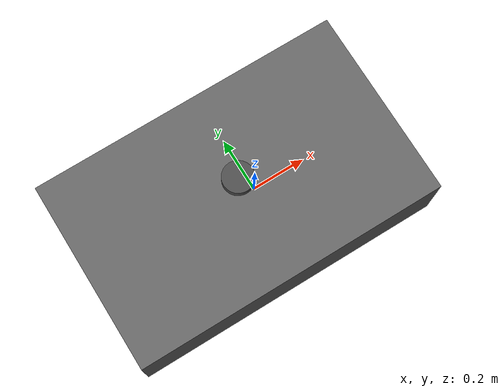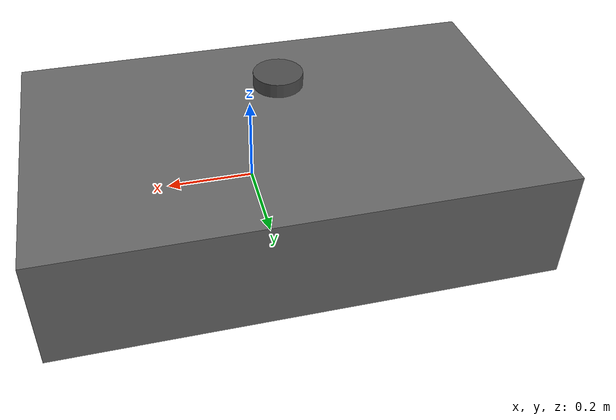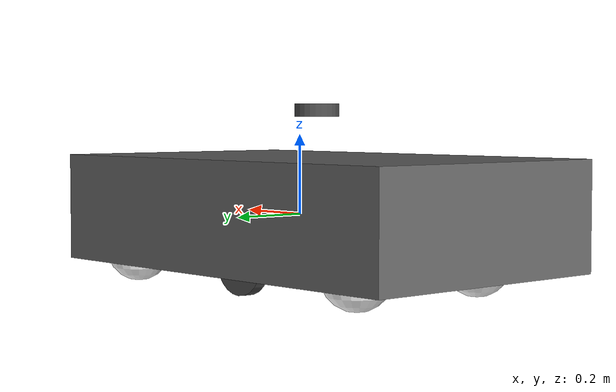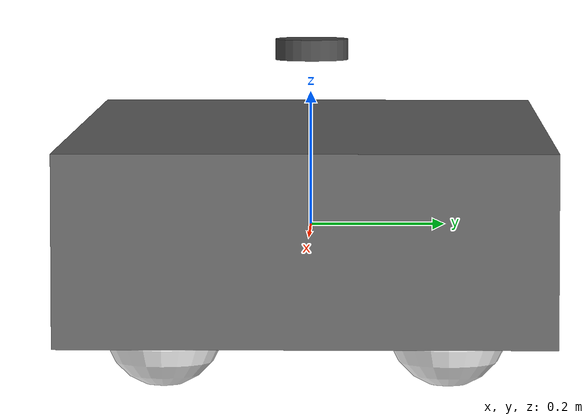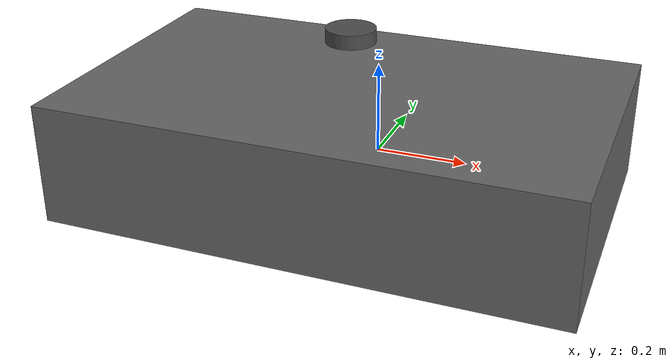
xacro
<?xml version="1.0" ?>
<robot name="turtlebot3_waffle" xmlns:xacro="http://ros.org/wiki/xacro">
  <xacro:include filename="$(find nuglebot)/urdf/common_properties.xacro"/>
  <xacro:include filename="$(find nuglebot)/urdf/turtlebot3_waffle.gazebo.xacro"/>

  <xacro:property name="r200_cam_rgb_px" value="0.005"/>
  <xacro:property name="r200_cam_rgb_py" value="0.018"/>
  <xacro:property name="r200_cam_rgb_pz" value="0.013"/>
  <xacro:property name="r200_cam_depth_offset" value="0.01"/>

  <link name="base_footprint"/>

  <joint name="base_joint" type="fixed">
    <parent link="base_footprint"/>
    <child link="base_link" />
    <origin xyz="0 0 0.010" rpy="0 0 0"/>
  </joint>

  <link name="base_link">
    <visual>
      <origin xyz="-0.064 0 0.0" rpy="0 0 0"/>
      <geometry>
       <box size="1.15 0.7 0.271"/>
      </geometry>
      <material name="light_black"/>
    </visual>

    <collision>
      <origin xyz="-0.064 0 0.047" rpy="0 0 0"/>
      <geometry>
        <box size="1.15 0.7 0.271"/>
      </geometry>
    </collision>

    <inertial>
      <origin xyz="0 0 0" rpy="0 0 0"/>
      <mass value="20.0"/>
      <inertia ixx="8.7002718e-03" ixy="-4.7576583e-05" ixz="1.1160499e-04"
               iyy="8.6195418e-03" iyz="-3.5422299e-06"
               izz="1.4612727e-02" />
    </inertial>
  </link>

  <joint name="wheel_left_joint" type="continuous">
    <parent link="base_link"/>
    <child link="wheel_left_link"/>
    <origin xyz="-0 0.1846 -0.116" rpy="0 1.57 1.57"/>
    <axis xyz="0 0 1"/>
  </joint>

  <link name="wheel_left_link">
    <visual>
      <origin xyz="0 0 0" rpy="0 0 0"/>
      <geometry>
         <cylinder length="0.03" radius="0.085"/>
      </geometry>
      <material name="dark"/>
    </visual>

    <collision>
      <origin xyz="0 0 0" rpy="0 0 0"/>
      <geometry>
        <cylinder length="0.03" radius="0.085"/>
      </geometry>
    </collision>

    <inertial>
      <origin xyz="0 0 0" />
      <mass value="3.0" />
      <inertia ixx="1.1175580e-05" ixy="-4.2369783e-11" ixz="-5.9381719e-09"
               iyy="1.1192413e-05" iyz="-1.4400107e-11"
               izz="2.0712558e-05" />
      </inertial>
  </link>

  <joint name="wheel_right_joint" type="continuous">
    <parent link="base_link"/>
    <child link="wheel_right_link"/>
    <origin xyz="0 -0.1846 -0.116" rpy="-1.57 0 0"/>
    <axis xyz="0 0 1"/>
  </joint>

  <link name="wheel_right_link">
    <visual>
      <origin xyz="0 0 0" rpy="3.14 0 0"/>
      <geometry>
       <cylinder length="0.03" radius="0.085"/>
      </geometry>
      <material name="dark"/>
    </visual>

    <collision>
      <origin xyz="0 0 0" rpy="3.14 0 0"/>
      <geometry>
        <cylinder length="0.03" radius="0.085"/>
      </geometry>
    </collision>

    <inertial>
      <origin xyz="0 0 0" />
      <mass value="3.0" />
      <inertia ixx="1.1175580e-05" ixy="-4.2369783e-11" ixz="-5.9381719e-09"
               iyy="1.1192413e-05" iyz="-1.4400107e-11"
               izz="2.0712558e-05" />
      </inertial>
  </link>

  <joint name="caster_back_right_joint" type="fixed">
    <parent link="base_link"/>
    <child link="caster_back_right_link"/>
    <origin xyz="0.417 0.199 -0.113" rpy="0 0 0"/>
  </joint>

  <link name="caster_back_right_link">
  <visual>
      <origin xyz="0 0 0" rpy="0 0 0"/>
      <geometry>
      <sphere radius="0.085"/>
      </geometry>
      <material name="white"/>
    </visual>
    <collision>
      <origin xyz="0 0 0" rpy="0 0 0"/>
      <geometry>
         <sphere radius="0.085"/>
      </geometry>
    </collision>

  <inertial>
      <mass value="0.5"/>
      <origin xyz="0 0 0"/>
      <inertia ixx="0.001" ixy="0.0" ixz="0.0" iyy="0.001" iyz="0.0" izz="0.001"/>
    </inertial>
  </link>

  <joint name="caster_back_left_joint" type="fixed">
    <parent link="base_link"/>
    <child link="caster_back_left_link"/>
    <origin xyz="0.417 -0.199 -0.113" rpy="0 0 0"/>
  </joint>

  <link name="caster_back_left_link">
    <visual>
      <origin xyz="0 0 0" rpy="0 0 0"/>
      <geometry>
         <sphere radius="0.085"/>
      </geometry>
      <material name="white"/>
    </visual>
    <collision>
      <origin xyz="0 0.001 0" rpy="0 0 0"/>
      <geometry>
          <sphere radius="0.085"/>
      </geometry>
    </collision>

   <inertial>
      <mass value="0.5"/>
      <origin xyz="0 0 0"/>
      <inertia ixx="0.001" ixy="0.0" ixz="0.0" iyy="0.001" iyz="0.0" izz="0.001"/>
    </inertial>
  </link>

  <link name="caster_front_right_link">
    <visual>
      <origin xyz="0 0 0" rpy="0 0 0"/>
      <geometry>
       <sphere radius="0.085"/>
      </geometry>
      <material name="white"/>
    </visual>

    <collision>
      <origin xyz="0 0 0" rpy="0 0 0"/>
      <geometry>
        <sphere radius="0.085"/>
      </geometry>
    </collision>

    <inertial>
      <origin xyz="0 0 0" />
      <mass value="0.5" />
      <inertia ixx="0.001" ixy="0.0" ixz="0.0"
               iyy="0.001" iyz="0.0"
               izz="0.001" />
    </inertial>
  </link>

    <link name="caster_front_left_link">
      <visual>
      <origin xyz="0 0 0" rpy="0 0 0"/>
      <geometry>
        <sphere radius="0.085"/>
      </geometry>
      <material name="white"/>
    </visual>
    <collision>
      <origin xyz="0 0 0" rpy="0 0 0"/>
      <geometry>
       <sphere radius="0.085"/>
      </geometry>
    </collision>

 <inertial>
      <mass value="0.5"/>
      <origin xyz="0 0 0"/>
      <inertia ixx="0.001" ixy="0.0" ixz="0.0" iyy="0.001" iyz="0.0" izz="0.001"/>
    </inertial>
  </link>

    <joint name="caster_front_left_joint" type="fixed">
    <parent link="base_link"/>
    <child link="caster_front_left_link"/>
    <origin xyz="-0.417 -0.199 -0.113" rpy="0 0 0"/>
  </joint>

  <joint name="caster_front_right_joint" type="fixed">
    <parent link="base_link"/>
    <child link="caster_front_right_link"/>
    <origin xyz="-0.417 0.199 -0.113" rpy="0 0 0"/>
  </joint>

  <joint name="scan_joint" type="fixed">
    <parent link="base_link"/>
    <child link="base_scan"/>
    <origin xyz="-0.064 0 0.25" rpy="0 0 0"/>
  </joint>

  <link name="base_scan">
    <visual>
      <origin xyz="0 0 0" rpy="0 0 0"/>
      <geometry>
        <cylinder length="0.0315" radius="0.055"/>
      </geometry>
      <material name="dark"/>
    </visual>

    <collision>
      <origin xyz="0.015 0 -0.0065" rpy="0 0 0"/>
      <geometry>
        <cylinder length="0.0255" radius="0.055"/>
      </geometry>
    </collision>

    <inertial>
      <mass value="0.02" />
      <origin xyz="0 0 0" />
      <inertia ixx="0.001" ixy="0.0" ixz="0.0"
               iyy="0.001" iyz="0.0"
               izz="0.001" />
    </inertial>
  </link>

</robot>

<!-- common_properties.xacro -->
<robot name="xacro_properties" xmlns:xacro="http://ros.org/wiki/xacro">

  <!-- Init colour -->
  <material name="black">
      <color rgba="0.0 0.0 0.0 1.0"/>
  </material>

  <material name="dark">
    <color rgba="0.3 0.3 0.3 1.0"/>
  </material>
  <material name="light_black">
    <color rgba="0.4 0.4 0.4 1.0"/>
  </material>

  <material name="blue">
    <color rgba="0.0 0.0 0.8 1.0"/>
  </material>

  <material name="green">
    <color rgba="0.0 0.8 0.0 1.0"/>
  </material>

  <material name="grey">
    <color rgba="0.5 0.5 0.5 1.0"/>
  </material>

  <material name="orange">
    <color rgba="${255/255} ${108/255} ${10/255} 1.0"/>
  </material>

  <material name="brown">
    <color rgba="${222/255} ${207/255} ${195/255} 1.0"/>
  </material>

  <material name="red">
    <color rgba="0.8 0.0 0.0 1.0"/>
  </material>

  <material name="white">
    <color rgba="1.0 1.0 1.0 1.0"/>
  </material>
</robot>
